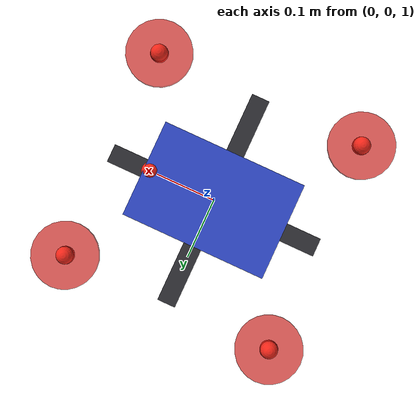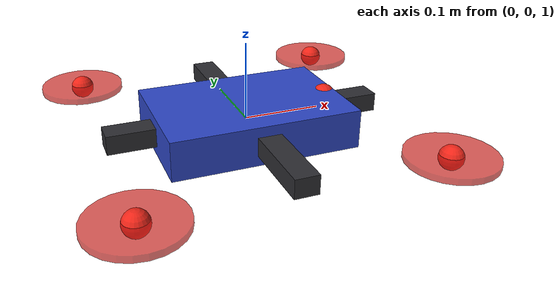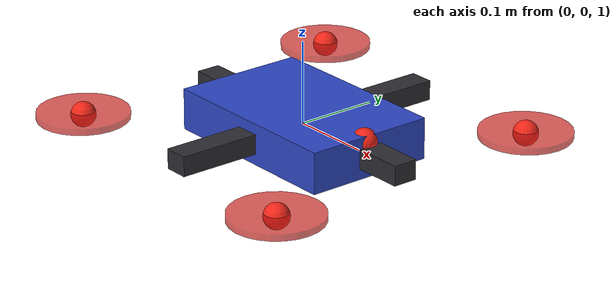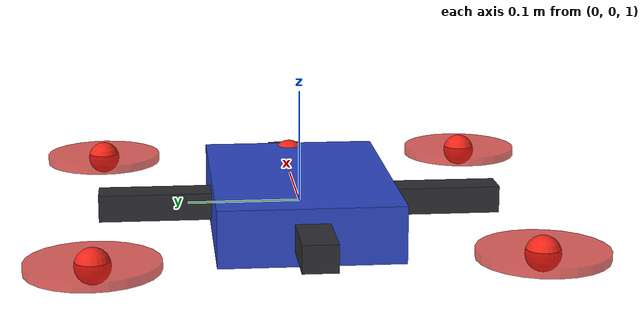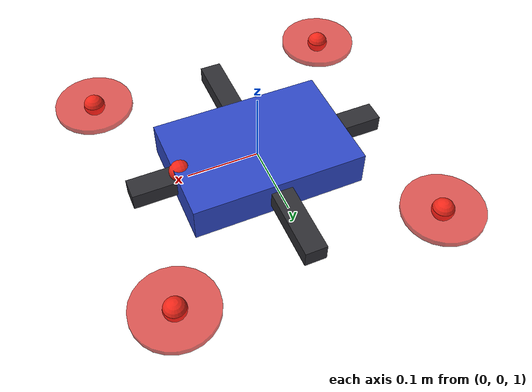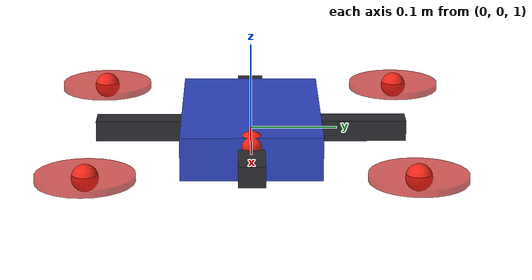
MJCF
<mujoco model="diffphys_drone">
  <compiler angle="radian" autolimits="true"/>

  <default>
    <geom rgba="0.45 0.48 0.52 1" contype="1" conaffinity="1"/>
    <site size="0.015" rgba="0.95 0.15 0.1 1"/>
  </default>

  <worldbody>
    <body name="base" pos="0 0 1">
      <freejoint name="root"/>
      <inertial pos="0 0 0" mass="1.0" diaginertia="0.012 0.012 0.022"/>

      <geom name="collision_envelope" type="sphere" size="0.15" rgba="0.05 0.7 0.95 0.18" group="3"/>
      <geom name="body_vis" type="box" size="0.12 0.08 0.025" rgba="0.18 0.28 0.78 1" contype="0" conaffinity="0" group="2"/>
      <geom name="arm_x_vis" type="box" size="0.18 0.015 0.012" rgba="0.18 0.18 0.2 1" contype="0" conaffinity="0" group="2"/>
      <geom name="arm_y_vis" type="box" size="0.015 0.18 0.012" rgba="0.18 0.18 0.2 1" contype="0" conaffinity="0" group="2"/>

      <site name="camera_site" pos="0.11 0 0.015" quat="0.5 -0.5 -0.5 0.5"/>
      <camera name="front_depth_cam" pos="0.11 0 0.015" quat="0.5 -0.5 -0.5 0.5" fovy="43.36" resolution="64 48"/>

      <site name="rotor_fl" pos="0.18 0.18 0"/>
      <site name="rotor_fr" pos="0.18 -0.18 0"/>
      <site name="rotor_rl" pos="-0.18 0.18 0"/>
      <site name="rotor_rr" pos="-0.18 -0.18 0"/>

      <geom name="rotor_fl_vis" type="cylinder" size="0.055 0.004" pos="0.18 0.18 0" rgba="0.85 0.1 0.08 0.7" contype="0" conaffinity="0" group="2"/>
      <geom name="rotor_fr_vis" type="cylinder" size="0.055 0.004" pos="0.18 -0.18 0" rgba="0.85 0.1 0.08 0.7" contype="0" conaffinity="0" group="2"/>
      <geom name="rotor_rl_vis" type="cylinder" size="0.055 0.004" pos="-0.18 0.18 0" rgba="0.85 0.1 0.08 0.7" contype="0" conaffinity="0" group="2"/>
      <geom name="rotor_rr_vis" type="cylinder" size="0.055 0.004" pos="-0.18 -0.18 0" rgba="0.85 0.1 0.08 0.7" contype="0" conaffinity="0" group="2"/>
    </body>
  </worldbody>
</mujoco>
